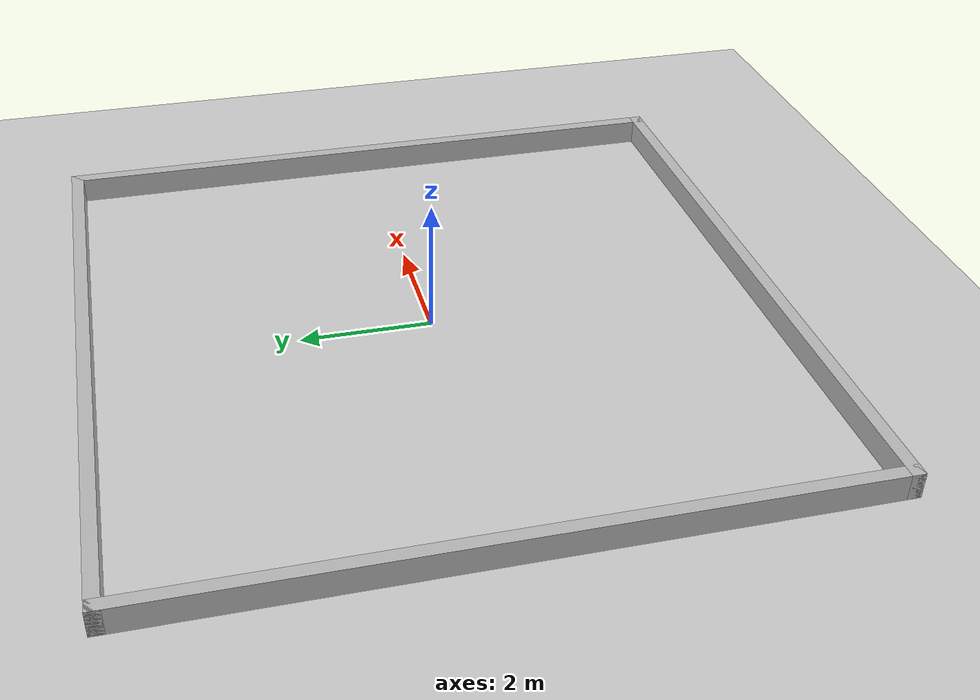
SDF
<?xml version="1.0" ?>
<sdf version="1.6">
  <world name="pursuit_arena">
    <include><uri>model://ground_plane</uri></include>
    <include><uri>model://sun</uri></include>
    <physics type="ode"><max_step_size>0.001</max_step_size><real_time_update_rate>1000</real_time_update_rate></physics>
    <gui><camera name="user_camera"><pose>0 -9 12 0.9 0 0</pose></camera></gui>
    <model name="north_wall"><static>true</static><link name="link"><collision name="collision"><geometry><box><size>10.4 0.2 0.4</size></box></geometry><pose>0 5.1 0.2 0 0 0</pose></collision><visual name="visual"><geometry><box><size>10.4 0.2 0.4</size></box></geometry><pose>0 5.1 0.2 0 0 0</pose></visual></link></model>
    <model name="south_wall"><static>true</static><link name="link"><collision name="collision"><geometry><box><size>10.4 0.2 0.4</size></box></geometry><pose>0 -5.1 0.2 0 0 0</pose></collision><visual name="visual"><geometry><box><size>10.4 0.2 0.4</size></box></geometry><pose>0 -5.1 0.2 0 0 0</pose></visual></link></model>
    <model name="east_wall"><static>true</static><link name="link"><collision name="collision"><geometry><box><size>0.2 10.4 0.4</size></box></geometry><pose>5.1 0 0.2 0 0 0</pose></collision><visual name="visual"><geometry><box><size>0.2 10.4 0.4</size></box></geometry><pose>5.1 0 0.2 0 0 0</pose></visual></link></model>
    <model name="west_wall"><static>true</static><link name="link"><collision name="collision"><geometry><box><size>0.2 10.4 0.4</size></box></geometry><pose>-5.1 0 0.2 0 0 0</pose></collision><visual name="visual"><geometry><box><size>0.2 10.4 0.4</size></box></geometry><pose>-5.1 0 0.2 0 0 0</pose></visual></link></model>
  </world>
</sdf>
